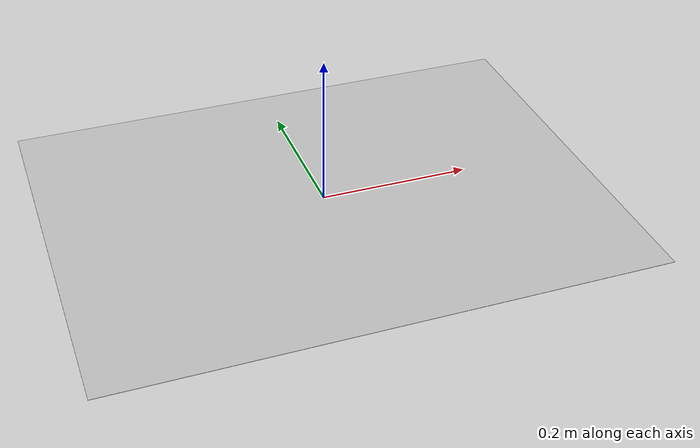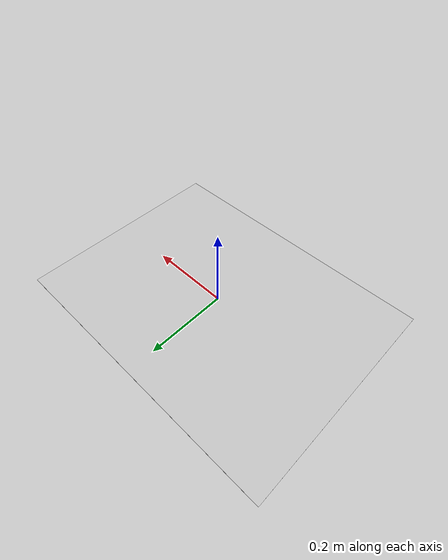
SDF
<?xml version="1.0" ?>
<sdf version="1.5">
  <model name="Calibrate_board">
    <static>true</static>
    <link name="link">
      <collision name="collision">
        <geometry>
          <plane>
            <normal>0 0 1</normal>
            <size>0.72 0.54</size>
          </plane>
        </geometry>
        <surface>
          <friction>
            <ode>
              <mu>100</mu>
              <mu2>50</mu2>
            </ode>
          </friction>
        </surface>
      </collision>
      <visual name="visual">
        <cast_shadows>false</cast_shadows>
        <geometry>
          <plane>
            <normal>0 0 1</normal>
            <size>0.72 0.54 </size>
          </plane>
        </geometry>
        <material>
          <script>
            <uri>model://Calibrate_board/materials/scripts</uri>
            <uri>model://Calibrate_board/materials/textures</uri>
            <name>Calibrate_board/Image </name>
          </script>
        </material>
      </visual>
    </link>
  </model>
</sdf>
